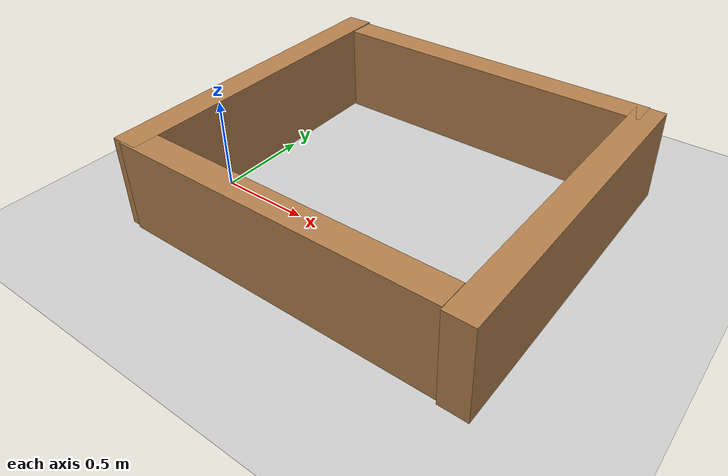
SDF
<sdf version="1.7">
 <world name="default">
  <light name="sun" type="directional">
   <pose>0 0 10 0 -0 0</pose>
   <diffuse>0.8 0.8 0.8 1</diffuse>
   <specular>0.2 0.2 0.2 1</specular>
   <attenuation>
    <range>1000</range>
    <constant>0.9</constant>
    <linear>0.01</linear>
    <quadratic>0.001</quadratic>
   </attenuation>
   <direction>-0.5 0.1 -0.9</direction>
   <spot><inner_angle>0</inner_angle><outer_angle>0</outer_angle><falloff>0</falloff></spot>
  </light>
  <model name="ground_plane">
   <static>1</static>
   <link name="link">
    <collision name="collision">
     <geometry><plane><normal>0 0 1</normal><size>100 100</size></plane></geometry>
     <surface>
      <contact><collide_bitmask>65535</collide_bitmask></contact>
      <friction><ode><mu>100</mu><mu2>50</mu2></ode></friction>
     </surface>
    </collision>
    <visual name="visual">
     <cast_shadows>0</cast_shadows>
     <geometry><plane><normal>0 0 1</normal><size>100 100</size></plane></geometry>
     <material>
      <script><uri>file://media/materials/scripts/gazebo.material</uri><name>Gazebo/Grey</name></script>
     </material>
    </visual>
   </link>
  </model>
  <gravity>0 0 -9.8</gravity>
  <magnetic_field>6e-06 2.3e-05 -4.2e-05</magnetic_field>
  <atmosphere type="adiabatic"/>
  <physics type="ode">
   <max_step_size>0.001</max_step_size>
   <real_time_factor>1</real_time_factor>
   <real_time_update_rate>1000</real_time_update_rate>
  </physics>
  <scene><ambient>0.4 0.4 0.4 1</ambient><background>0.7 0.7 0.7 1</background><shadows>1</shadows></scene>
  <spherical_coordinates>
   <surface_model>EARTH_WGS84</surface_model>
   <latitude_deg>0</latitude_deg>
   <longitude_deg>0</longitude_deg>
   <elevation>0</elevation>
   <heading_deg>0</heading_deg>
  </spherical_coordinates>
  <model name="pared18">
   <pose>0.813983 0.000867 0 0 -0 0</pose>
   <link name="Wall_1">
    <collision name="Wall_1_Collision">
     <geometry><box><size>1.8 0.15 0.5</size></box></geometry>
     <pose>0 0 0.25 0 -0 0</pose>
    </collision>
    <visual name="Wall_1_Visual">
     <pose>0 0 0.25 0 -0 0</pose>
     <geometry><box><size>1.8 0.15 0.5</size></box></geometry>
     <material>
      <script><uri>file://media/materials/scripts/gazebo.material</uri><name>Gazebo/Wood</name></script>
      <ambient>0.435294 0.796078 0.67451 1</ambient>
     </material>
     <meta><layer>0</layer></meta>
    </visual>
    <pose>0 -0.4675 0 0 -0 3.14159</pose>
   </link>
   <static>1</static>
  </model>
  <model name="pared18_0">
   <pose>0.885191 1.64396 0 0 -0 0</pose>
   <link name="Wall_1">
    <collision name="Wall_1_Collision">
     <geometry><box><size>1.8 0.15 0.5</size></box></geometry>
     <pose>0 0 0.25 0 -0 0</pose>
    </collision>
    <visual name="Wall_1_Visual">
     <pose>0 0 0.25 0 -0 0</pose>
     <geometry><box><size>1.8 0.15 0.5</size></box></geometry>
     <material>
      <script><uri>file://media/materials/scripts/gazebo.material</uri><name>Gazebo/Wood</name></script>
      <ambient>0.435294 0.796078 0.67451 1</ambient>
     </material>
     <meta><layer>0</layer></meta>
    </visual>
    <pose>0 -0.4675 0 0 -0 3.14159</pose>
   </link>
   <static>1</static>
  </model>
  <model name="pared18_1">
   <pose>2.2625 0.341087 0 0 0 -1.57582</pose>
   <link name="Wall_1">
    <collision name="Wall_1_Collision">
     <geometry><box><size>1.8 0.15 0.5</size></box></geometry>
     <pose>0 0 0.25 0 -0 0</pose>
    </collision>
    <visual name="Wall_1_Visual">
     <pose>0 0 0.25 0 -0 0</pose>
     <geometry><box><size>1.8 0.15 0.5</size></box></geometry>
     <material>
      <script><uri>file://media/materials/scripts/gazebo.material</uri><name>Gazebo/Wood</name></script>
      <ambient>0.435294 0.796078 0.67451 1</ambient>
     </material>
     <meta><layer>0</layer></meta>
    </visual>
    <pose>0 -0.4675 0 0 -0 3.14159</pose>
   </link>
   <static>1</static>
  </model>
  <model name="pared18_2">
   <pose>0.382592 0.377451 0 0 0 -1.55395</pose>
   <link name="Wall_1">
    <collision name="Wall_1_Collision">
     <geometry><box><size>1.8 0.15 0.5</size></box></geometry>
     <pose>0 0 0.25 0 -0 0</pose>
    </collision>
    <visual name="Wall_1_Visual">
     <pose>0 0 0.25 0 -0 0</pose>
     <geometry><box><size>1.8 0.15 0.5</size></box></geometry>
     <material>
      <script><uri>file://media/materials/scripts/gazebo.material</uri><name>Gazebo/Wood</name></script>
      <ambient>0.435294 0.796078 0.67451 1</ambient>
     </material>
     <meta><layer>0</layer></meta>
    </visual>
    <pose>0 -0.4675 0 0 -0 3.14159</pose>
   </link>
   <static>1</static>
  </model>
 </world>
</sdf>
